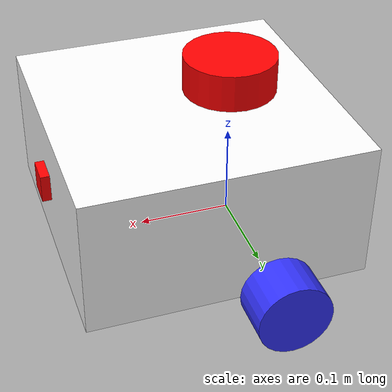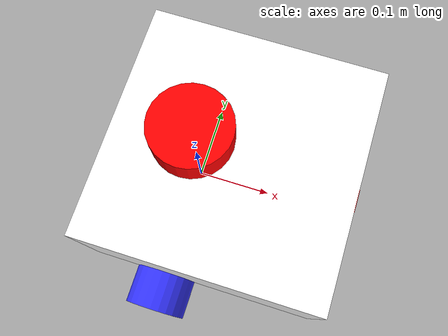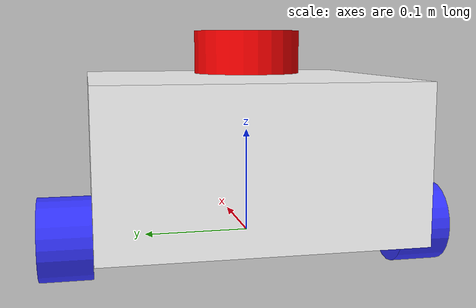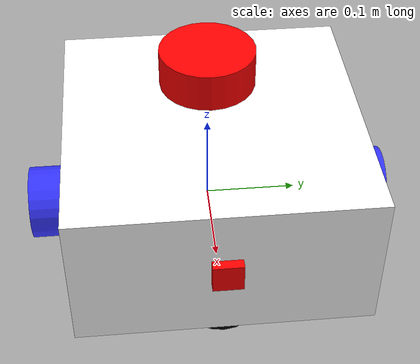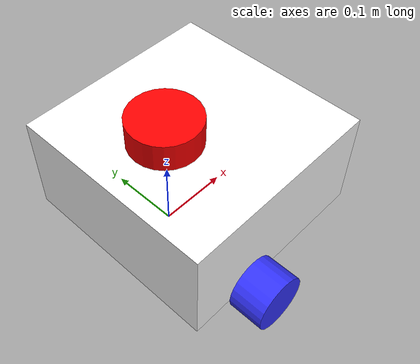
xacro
<?xml version="1.0"?>
<robot xmlns:xacro="http://www.ros.org/wiki/xacro"  name="robot">

    <xacro:arg name="use_ros2_control" default="true"/>

    <xacro:include filename="inertial_macros.xacro"/>
    <xacro:include filename="robot_core.xacro"/>
    <xacro:include filename="lidar.xacro"/>
    <xacro:include filename="cameras.xacro"/>

    <xacro:if value="$(arg use_ros2_control)">
        <xacro:include filename="ros2_control.xacro" />
    </xacro:if>
    <xacro:unless value="$(arg use_ros2_control)">
        <xacro:include filename="gazebo_control.xacro" />
    </xacro:unless>

</robot>

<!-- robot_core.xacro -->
<robot xmlns:xacro="http://www.ros.org/wiki/xacro">

    <!-- MATERIALS -->
    <material name="white">
        <color rgba="1 1 1 1"/>
    </material>

    <material name="orange">
        <color rgba="1 0.3 0.1 1"/>
    </material>

    <material name="blue">
        <color rgba="0.2 0.2 1 1"/>
    </material>

    <material name="black">
        <color rgba="0 0 0 1"/>
    </material>

    <material name="red">
        <color rgba="1 0 0 1"/>
    </material>

    <!-- PROPERTIES
    it would be good to add more to RE-RASSOR. Anywhere things are repeated should be a property -->
    <xacro:property name="wheel_radius" value="0.04"/>
    <xacro:property name="wheel_length" value="0.05"/>
    <xacro:property name="caster_wheel_radius" value="0.05"/>

    <!-- Essentially, a joint is the initial declaration (focused on relationship to other joints)
        and the link is the finer details such as visuals, geometry, material, and reference point (origin) -->

    <!-- BASES -->
    <link name="base_link"></link>

    <!-- CHASSIS -->
    <joint name="chassis_joint" type="fixed">
        <parent link="base_link"/>
        <child link="chassis"/>
        <origin xyz="-0.1 0 0"/> <!-- The joint origin defines the pose (position + orientation)
                                      of the child link relative to the parental link. These are offsets not coordinates -->
    </joint>

    <link name="chassis">
        <visual>
            <origin xyz="0.15 0 0.075" rpy="0 0 0"/> <!-- the pose of the geometry inside the link's own coordinate frame -->
            <geometry>
                <box size="0.3 0.3 0.15"/>
            </geometry>
            <material name="white"/>
        </visual>
        <collision>
            <origin xyz="0.15 0 0.075" rpy="0 0 0"/>
            <geometry>
                <box size="0.3 0.3 0.15"/>
            </geometry>
        </collision>
        <xacro:inertial_box mass="0.5" x="0.3" y="0.3" z="0.15">
            <origin xyz="0.15 0 0.075" rpy="0 0 0"/>
        </xacro:inertial_box>
    </link>

    <gazebo reference="chassis">
        <material>Gazebo/White</material>
    </gazebo>

    <!-- LEFT WHEEL -->
    <joint name="left_wheel_joint" type="continuous">
        <parent link="base_link"/>
        <child link="left_wheel"/>
        <origin xyz="0 0.175 0" rpy="-${pi/2} 0 0"/>
        <axis xyz="0 0 1"/>
        <limit  effort="5" velocity="20"/>
    </joint>

    <link name="left_wheel">
        <visual>
            <geometry>
                <cylinder radius="${wheel_radius}" length="${wheel_length}"/>
            </geometry>
            <material name="blue"/>
        </visual>
        <collision>
            <geometry>
                <cylinder radius="${wheel_radius}" length="${wheel_length}"/>
            </geometry>
        </collision>
        <xacro:inertial_cylinder mass="0.1" length="${wheel_length}" radius="${wheel_radius}">
            <origin xyz="0 0 0" rpy="0 0 0"/>
        </xacro:inertial_cylinder>
    </link>

    <gazebo reference="left_wheel">
        <material>Gazebo/Blue</material>
    </gazebo>

    <!-- RIGHT WHEEL -->
    <joint name="right_wheel_joint" type="continuous">
        <parent link="base_link"/>
        <child link="right_wheel"/>
        <origin xyz="0 -0.175 0" rpy="${pi/2} 0 0"/>
        <axis xyz="0 0 -1"/>
        <limit  effort="5" velocity="20"/>
    </joint>

    <link name="right_wheel">
        <visual>
            <geometry>
                <cylinder radius="${wheel_radius}" length="${wheel_length}"/>
            </geometry>
            <material name="blue"/>
        </visual>
        <collision>
            <geometry>
                <cylinder radius="${wheel_radius}" length="${wheel_length}"/>
            </geometry>
        </collision>
        <xacro:inertial_cylinder mass="0.1" length="${wheel_length}" radius="${wheel_radius}">
            <origin xyz="0 0 0" rpy="0 0 0"/>
        </xacro:inertial_cylinder>
    </link>

    <gazebo reference="left_wheel">
        <material>Gazebo/Blue</material>
    </gazebo>

    <!-- CASTER WHEEL -->
    <joint name="caster_wheel_joint" type="fixed">
        <parent link="chassis"/>
        <child link="caster_wheel"/>
        <origin xyz="0.24 0.0 0.0" rpy="0.0 0.0 0.0"/>
    </joint>

    <link name="caster_wheel">
        <visual>
            <geometry>
                <sphere radius="${caster_wheel_radius}"/>
            </geometry>
            <material name="black"/>
        </visual>
        <collision>
            <geometry>
                <sphere radius="${caster_wheel_radius}"/>
            </geometry>
        </collision>
        <xacro:inertial_sphere mass="0.1" radius="${caster_wheel_radius}">
            <origin xyz="0 0 0" rpy="0 0 0"/>
        </xacro:inertial_sphere>
    </link>

    <gazebo reference="caster_wheel">
        <material>Gazebo/Black</material>
        <mu1 value="0.001"/>
        <mu2 value="0.001"/>
    </gazebo>

</robot>

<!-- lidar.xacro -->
<robot xmlns:xacro="http://www.ros.org/wiki/xacro" >

    <!-- 2D LIDAR -->
    <joint name="lidar_joint" type="fixed">
        <parent link="chassis"/>
        <child link="lidar_link"/>
        <origin xyz="0.1 0 0.175" rpy="0 0 0"/>
    </joint>

    <link name="lidar_link">
        <visual>
            <geometry>
                <cylinder radius="0.05" length="0.04"/>
            </geometry>
            <material name="red"/>
        </visual>
        <collision>
            <geometry>
                <cylinder radius="0.05" length="0.04"/>
            </geometry>
        </collision>
        <xacro:inertial_cylinder mass="0.1" length="0.04" radius="0.05">
            <origin xyz="0 0 0" rpy="0 0 0"/>
        </xacro:inertial_cylinder>
    </link>

    <gazebo reference="lidar_link">
    <sensor name="lidar_sensor" type="gpu_lidar">
        <update_rate>10</update_rate>               <!-- 10 Hz scanning frequency -->
        <topic>lidar2</topic>                      <!-- Gazebo transport topic name -->
        <gz_frame_id>lidar_link</gz_frame_id>
        <frame_id>lidar_link</frame_id>
        <lidar>
        <scan>
            <horizontal>
            <samples>720</samples>               <!-- e.g. 720 beams over 360° -->
            <resolution>1</resolution>
            <min_angle>-3.14159</min_angle>      <!-- -180 degrees -->
            <max_angle>3.14159</max_angle>       <!-- +180 degrees -->
            </horizontal>
            <!-- (Optional) vertical block for 3D LiDAR -->
        </scan>
        <range>
            <min>0.05</min>                        <!-- 5 cm minimum range -->
            <max>10.0</max>                        <!-- 10 m maximum range -->
            <resolution>0.01</resolution>          <!-- range resolution 1 cm -->
        </range>
        <noise>
            <type>gaussian</type>                  <!-- simulate noise in measurements -->
            <mean>0.0</mean>
            <stddev>0.01</stddev>                  <!-- standard deviation of noise -->
        </noise>
        </lidar>
        <always_on>1</always_on>
        <visualize>true</visualize>
    </sensor>
    </gazebo>

</robot>

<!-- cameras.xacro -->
<robot xmlns:xacro="http://www.ros.org/wiki/xacro">

    <!-- CAMERA -->
    <joint name="camera_joint" type="fixed">
        <parent link="chassis"/>
        <child link="camera_link"/>
        <origin xyz="0.305 0 0.08" rpy="0 0 0"/>
    </joint>

    <link name="camera_link">
        <visual>
            <geometry>
                <box size="0.010 0.030 0.030"/>
            </geometry>
            <material name="red"/>
        </visual>
    </link>

    <gazebo reference="camera_link">
        <material>Gazebo/Red</material>
    </gazebo>

    <!-- OPTICAL FRAME -->
    <joint name="camera_optical_joint" type="fixed">
        <parent link="camera_link"/>
        <child link="camera_link_optical"/>
        <!-- Rotate ROS frame to optical frame: +x->right, +y->down, +Z->forward -->
        <origin xyz="0 0 0" rpy="${-pi/2} 0 ${-pi/2}"/>
    </joint>

    <link name="camera_link_optical"/>

    <gazebo reference="camera_link">
        <sensor name="camera" type="rgbd_camera">
            <always_on>true</always_on>
            <visualize>true</visualize>        <!-- Enable camera view in Gazebo client -->
            <update_rate>20</update_rate>      <!-- 10 Hz publish rate -->
            <gz_frame_id>camera_link</gz_frame_id>
            <frame_id>camera_link</frame_id>
            <topic>camera</topic>                    <!-- Gazebo Transport topic for images, YES DEPTH YES RGB -->
            <camera name="robot_camera">
                <camera_info_topic>camera/camera_info</camera_info_topic> <!-- For no depth AND for yes depth yes rgb -->
                <optical_frame_id>camera_link_optical</optical_frame_id>
                <horizontal_fov>1.089</horizontal_fov>      <!-- ~62.4 degrees HFOV -->
                <image>
                    <width>640</width>
                    <height>480</height>
                    <format>R8G8B8</format>                   <!-- 8-bit RGB image, use R_FLOAT32 for depth only -->
                </image>
                <clip>
                    <near>0.05</near>
                    <far>8.0</far>
                </clip>
            </camera>
            <!-- THE BELOW IS ONLY FOR DEPTH + RGB CAMERAS -->
            <!-- (distortion parameters, etc., can be added as needed)-->
        </sensor>
    </gazebo>

</robot>
